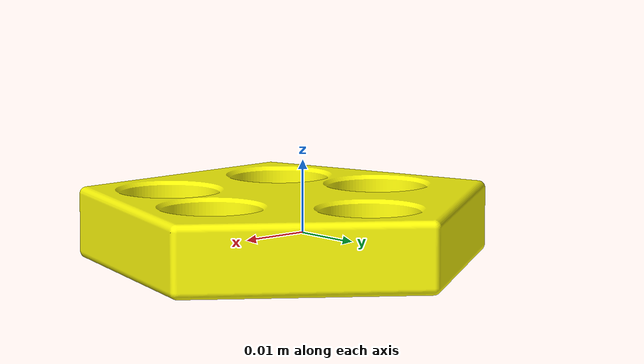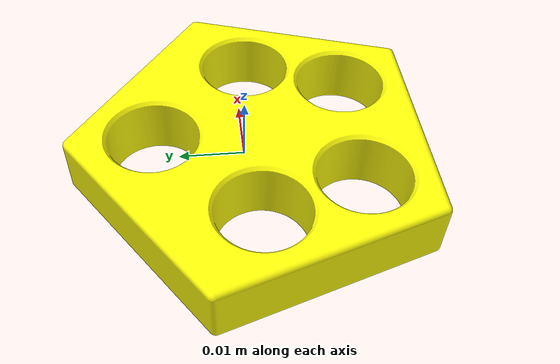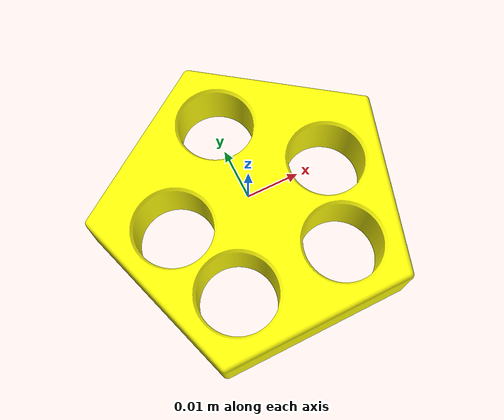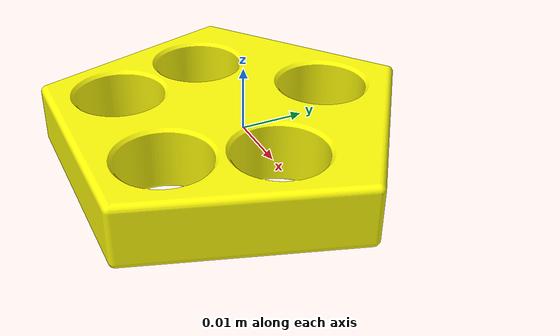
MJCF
<mujoco model="toy_five_insertion_five">
  <default>
    <default class="toy_five_insertion_five_visual">
      <geom group="2" type="mesh" contype="0" conaffinity="0"/>
    </default>
    <default class="toy_five_insertion_five_collision">
      <geom group="3" type="mesh"/>
    </default>
  </default>
  <asset>
    <material name="toy_five_insertion_five_material" specular="0.5" shininess="0.5" rgba="1 0.99109215 0.028425755 1"/>
    <mesh file="toy_five_insertion_five.obj"/>
    <mesh file="toy_five_insertion_five_collision_0.obj"/>
    <mesh file="toy_five_insertion_five_collision_1.obj"/>
    <mesh file="toy_five_insertion_five_collision_2.obj"/>
    <mesh file="toy_five_insertion_five_collision_3.obj"/>
    <mesh file="toy_five_insertion_five_collision_4.obj"/>
    <mesh file="toy_five_insertion_five_collision_5.obj"/>
    <mesh file="toy_five_insertion_five_collision_6.obj"/>
    <mesh file="toy_five_insertion_five_collision_7.obj"/>
    <mesh file="toy_five_insertion_five_collision_8.obj"/>
    <mesh file="toy_five_insertion_five_collision_9.obj"/>
    <mesh file="toy_five_insertion_five_collision_10.obj"/>
    <mesh file="toy_five_insertion_five_collision_11.obj"/>
    <mesh file="toy_five_insertion_five_collision_12.obj"/>
    <mesh file="toy_five_insertion_five_collision_13.obj"/>
    <mesh file="toy_five_insertion_five_collision_14.obj"/>
    <mesh file="toy_five_insertion_five_collision_15.obj"/>
    <mesh file="toy_five_insertion_five_collision_16.obj"/>
    <mesh file="toy_five_insertion_five_collision_17.obj"/>
    <mesh file="toy_five_insertion_five_collision_18.obj"/>
    <mesh file="toy_five_insertion_five_collision_19.obj"/>
    <mesh file="toy_five_insertion_five_collision_20.obj"/>
    <mesh file="toy_five_insertion_five_collision_21.obj"/>
    <mesh file="toy_five_insertion_five_collision_22.obj"/>
    <mesh file="toy_five_insertion_five_collision_23.obj"/>
    <mesh file="toy_five_insertion_five_collision_24.obj"/>
    <mesh file="toy_five_insertion_five_collision_25.obj"/>
    <mesh file="toy_five_insertion_five_collision_26.obj"/>
    <mesh file="toy_five_insertion_five_collision_27.obj"/>
    <mesh file="toy_five_insertion_five_collision_28.obj"/>
    <mesh file="toy_five_insertion_five_collision_29.obj"/>
    <mesh file="toy_five_insertion_five_collision_30.obj"/>
    <mesh file="toy_five_insertion_five_collision_31.obj"/>
    <mesh file="toy_five_insertion_five_collision_32.obj"/>
    <mesh file="toy_five_insertion_five_collision_33.obj"/>
    <mesh file="toy_five_insertion_five_collision_34.obj"/>
    <mesh file="toy_five_insertion_five_collision_35.obj"/>
    <mesh file="toy_five_insertion_five_collision_36.obj"/>
    <mesh file="toy_five_insertion_five_collision_37.obj"/>
    <mesh file="toy_five_insertion_five_collision_38.obj"/>
    <mesh file="toy_five_insertion_five_collision_39.obj"/>
    <mesh file="toy_five_insertion_five_collision_40.obj"/>
    <mesh file="toy_five_insertion_five_collision_41.obj"/>
    <mesh file="toy_five_insertion_five_collision_42.obj"/>
    <mesh file="toy_five_insertion_five_collision_43.obj"/>
    <mesh file="toy_five_insertion_five_collision_44.obj"/>
    <mesh file="toy_five_insertion_five_collision_45.obj"/>
    <mesh file="toy_five_insertion_five_collision_46.obj"/>
    <mesh file="toy_five_insertion_five_collision_47.obj"/>
    <mesh file="toy_five_insertion_five_collision_48.obj"/>
    <mesh file="toy_five_insertion_five_collision_49.obj"/>
    <mesh file="toy_five_insertion_five_collision_50.obj"/>
    <mesh file="toy_five_insertion_five_collision_51.obj"/>
    <mesh file="toy_five_insertion_five_collision_52.obj"/>
    <mesh file="toy_five_insertion_five_collision_53.obj"/>
    <mesh file="toy_five_insertion_five_collision_54.obj"/>
    <mesh file="toy_five_insertion_five_collision_55.obj"/>
    <mesh file="toy_five_insertion_five_collision_56.obj"/>
    <mesh file="toy_five_insertion_five_collision_57.obj"/>
    <mesh file="toy_five_insertion_five_collision_58.obj"/>
    <mesh file="toy_five_insertion_five_collision_59.obj"/>
    <mesh file="toy_five_insertion_five_collision_60.obj"/>
    <mesh file="toy_five_insertion_five_collision_61.obj"/>
    <mesh file="toy_five_insertion_five_collision_62.obj"/>
    <mesh file="toy_five_insertion_five_collision_63.obj"/>
    <mesh file="toy_five_insertion_five_collision_64.obj"/>
    <mesh file="toy_five_insertion_five_collision_65.obj"/>
    <mesh file="toy_five_insertion_five_collision_66.obj"/>
    <mesh file="toy_five_insertion_five_collision_67.obj"/>
    <mesh file="toy_five_insertion_five_collision_68.obj"/>
    <mesh file="toy_five_insertion_five_collision_69.obj"/>
    <mesh file="toy_five_insertion_five_collision_70.obj"/>
    <mesh file="toy_five_insertion_five_collision_71.obj"/>
    <mesh file="toy_five_insertion_five_collision_72.obj"/>
    <mesh file="toy_five_insertion_five_collision_73.obj"/>
  </asset>
  <worldbody>
    <body name="toy_five_insertion_five">
      <freejoint/>
      <geom material="toy_five_insertion_five_material" mesh="toy_five_insertion_five" class="toy_five_insertion_five_visual"/>
      <geom mesh="toy_five_insertion_five_collision_0" rgba="0.8431470032554789 0.1730719803800872 0.3996753027734926 1" class="toy_five_insertion_five_collision"/>
      <geom mesh="toy_five_insertion_five_collision_1" rgba="0.7243651531870886 0.5396626018999219 0.44139622097108444 1" class="toy_five_insertion_five_collision"/>
      <geom mesh="toy_five_insertion_five_collision_2" rgba="0.43437822045113905 0.43199944602909657 0.45699726946878727 1" class="toy_five_insertion_five_collision"/>
      <geom mesh="toy_five_insertion_five_collision_3" rgba="0.7572673653587453 0.513028742191479 0.07045216776699414 1" class="toy_five_insertion_five_collision"/>
      <geom mesh="toy_five_insertion_five_collision_4" rgba="0.90909619667794 0.3050360500834769 0.9417147022771828 1" class="toy_five_insertion_five_collision"/>
      <geom mesh="toy_five_insertion_five_collision_5" rgba="0.6195206836827488 0.7905967530513222 0.8597769071472916 1" class="toy_five_insertion_five_collision"/>
      <geom mesh="toy_five_insertion_five_collision_6" rgba="0.021935716060219046 0.520529314268957 0.06896665904837096 1" class="toy_five_insertion_five_collision"/>
      <geom mesh="toy_five_insertion_five_collision_7" rgba="0.065329624961867 0.26051532778146624 0.4238685339221705 1" class="toy_five_insertion_five_collision"/>
      <geom mesh="toy_five_insertion_five_collision_8" rgba="0.6274183227959609 0.8570607131699203 0.9007773389797016 1" class="toy_five_insertion_five_collision"/>
      <geom mesh="toy_five_insertion_five_collision_9" rgba="0.43516774288238014 0.48098482292727807 0.7447710062869743 1" class="toy_five_insertion_five_collision"/>
      <geom mesh="toy_five_insertion_five_collision_10" rgba="0.5192895008709781 0.8458921079484304 0.7807107516895934 1" class="toy_five_insertion_five_collision"/>
      <geom mesh="toy_five_insertion_five_collision_11" rgba="0.06407176033929463 0.2066564967012201 0.5655320108967842 1" class="toy_five_insertion_five_collision"/>
      <geom mesh="toy_five_insertion_five_collision_12" rgba="0.9784153534154234 0.5521512788350941 0.9631040192657314 1" class="toy_five_insertion_five_collision"/>
      <geom mesh="toy_five_insertion_five_collision_13" rgba="0.3392987714391873 0.3767577090489934 0.1696164555336187 1" class="toy_five_insertion_five_collision"/>
      <geom mesh="toy_five_insertion_five_collision_14" rgba="0.8340094588417821 0.016007377655499422 0.049145858619198846 1" class="toy_five_insertion_five_collision"/>
      <geom mesh="toy_five_insertion_five_collision_15" rgba="0.3853744932109311 0.9320720845469848 0.5054089148049726 1" class="toy_five_insertion_five_collision"/>
      <geom mesh="toy_five_insertion_five_collision_16" rgba="0.7262424814353706 0.13346900787934335 0.6332566538636838 1" class="toy_five_insertion_five_collision"/>
      <geom mesh="toy_five_insertion_five_collision_17" rgba="0.5887569049500098 0.8728154738858975 0.5797407310951768 1" class="toy_five_insertion_five_collision"/>
      <geom mesh="toy_five_insertion_five_collision_18" rgba="0.16929390352509255 0.05079145745370417 0.7474499073962364 1" class="toy_five_insertion_five_collision"/>
      <geom mesh="toy_five_insertion_five_collision_19" rgba="0.6367151105030725 0.010540720908714274 0.5229121512537109 1" class="toy_five_insertion_five_collision"/>
      <geom mesh="toy_five_insertion_five_collision_20" rgba="0.7545809619875616 0.5723935151079861 0.204179003531064 1" class="toy_five_insertion_five_collision"/>
      <geom mesh="toy_five_insertion_five_collision_21" rgba="0.0915624221735436 0.9233714942161435 0.3624457068168956 1" class="toy_five_insertion_five_collision"/>
      <geom mesh="toy_five_insertion_five_collision_22" rgba="0.6686227571178559 0.6926230773521218 0.172271965791995 1" class="toy_five_insertion_five_collision"/>
      <geom mesh="toy_five_insertion_five_collision_23" rgba="0.7680427933087316 0.9589317642009401 0.28630016657310897 1" class="toy_five_insertion_five_collision"/>
      <geom mesh="toy_five_insertion_five_collision_24" rgba="0.20985725479713102 0.45692760770831997 0.4720695906671195 1" class="toy_five_insertion_five_collision"/>
      <geom mesh="toy_five_insertion_five_collision_25" rgba="0.5584903084286662 0.8895270007830589 0.9673730884669456 1" class="toy_five_insertion_five_collision"/>
      <geom mesh="toy_five_insertion_five_collision_26" rgba="0.07895517371324423 0.7360149083328869 0.5995333936865201 1" class="toy_five_insertion_five_collision"/>
      <geom mesh="toy_five_insertion_five_collision_27" rgba="0.8225872584657377 0.6864072442676459 0.8646288595234077 1" class="toy_five_insertion_five_collision"/>
      <geom mesh="toy_five_insertion_five_collision_28" rgba="0.16397299827367806 0.6709814420020088 0.14693764754870853 1" class="toy_five_insertion_five_collision"/>
      <geom mesh="toy_five_insertion_five_collision_29" rgba="0.8127199630963121 0.6002715754060046 0.5687848123998541 1" class="toy_five_insertion_five_collision"/>
      <geom mesh="toy_five_insertion_five_collision_30" rgba="0.571111101562962 0.9298098842725845 0.3805570399257 1" class="toy_five_insertion_five_collision"/>
      <geom mesh="toy_five_insertion_five_collision_31" rgba="0.4833997683095408 0.5520243603116798 0.8519238423424038 1" class="toy_five_insertion_five_collision"/>
      <geom mesh="toy_five_insertion_five_collision_32" rgba="0.0592655710962392 0.7861129641368169 0.8190453048324644 1" class="toy_five_insertion_five_collision"/>
      <geom mesh="toy_five_insertion_five_collision_33" rgba="0.4475687621957436 0.8425736297627414 0.09246337607332134 1" class="toy_five_insertion_five_collision"/>
      <geom mesh="toy_five_insertion_five_collision_34" rgba="0.8718622971763524 0.8834769949860347 0.8400375149338292 1" class="toy_five_insertion_five_collision"/>
      <geom mesh="toy_five_insertion_five_collision_35" rgba="0.5533365176467431 0.2534498239524646 0.21415293960971582 1" class="toy_five_insertion_five_collision"/>
      <geom mesh="toy_five_insertion_five_collision_36" rgba="0.3605273080158087 0.17018766305906308 0.12266809446843696 1" class="toy_five_insertion_five_collision"/>
      <geom mesh="toy_five_insertion_five_collision_37" rgba="0.36496949755395147 0.8023988737081376 0.5343657134422248 1" class="toy_five_insertion_five_collision"/>
      <geom mesh="toy_five_insertion_five_collision_38" rgba="0.23285874441926857 0.4381737092533582 0.7990234611133633 1" class="toy_five_insertion_five_collision"/>
      <geom mesh="toy_five_insertion_five_collision_39" rgba="0.3502874589713443 0.7203227673536778 0.9139666862592446 1" class="toy_five_insertion_five_collision"/>
      <geom mesh="toy_five_insertion_five_collision_40" rgba="0.37382058819591635 0.11226238154890933 0.5745734145364313 1" class="toy_five_insertion_five_collision"/>
      <geom mesh="toy_five_insertion_five_collision_41" rgba="0.19360726516677385 0.7312953545957116 0.8691261164552375 1" class="toy_five_insertion_five_collision"/>
      <geom mesh="toy_five_insertion_five_collision_42" rgba="0.8194433707464255 0.702300658124522 0.9491748851722848 1" class="toy_five_insertion_five_collision"/>
      <geom mesh="toy_five_insertion_five_collision_43" rgba="0.2084532577791488 0.5217352994594165 0.9317359737371319 1" class="toy_five_insertion_five_collision"/>
      <geom mesh="toy_five_insertion_five_collision_44" rgba="0.9370139872992768 0.5536028278545924 0.9425519870425991 1" class="toy_five_insertion_five_collision"/>
      <geom mesh="toy_five_insertion_five_collision_45" rgba="0.9025189975692863 0.7261518180280014 0.03117797841233172 1" class="toy_five_insertion_five_collision"/>
      <geom mesh="toy_five_insertion_five_collision_46" rgba="0.1865984678013578 0.6580967718228848 0.23757581548350692 1" class="toy_five_insertion_five_collision"/>
      <geom mesh="toy_five_insertion_five_collision_47" rgba="0.6053601120884041 0.9027240679414932 0.8418776450418355 1" class="toy_five_insertion_five_collision"/>
      <geom mesh="toy_five_insertion_five_collision_48" rgba="0.8786453062211786 0.31025468249042176 0.485664245002991 1" class="toy_five_insertion_five_collision"/>
      <geom mesh="toy_five_insertion_five_collision_49" rgba="0.26107939091961985 0.766653513225912 0.6117994136628161 1" class="toy_five_insertion_five_collision"/>
      <geom mesh="toy_five_insertion_five_collision_50" rgba="0.7583260615159778 0.5644411059732338 0.9957563879495925 1" class="toy_five_insertion_five_collision"/>
      <geom mesh="toy_five_insertion_five_collision_51" rgba="0.6620551831517513 0.5439214084924637 0.11021958989540548 1" class="toy_five_insertion_five_collision"/>
      <geom mesh="toy_five_insertion_five_collision_52" rgba="0.45849316874648505 0.5773057463561693 0.8063888730294471 1" class="toy_five_insertion_five_collision"/>
      <geom mesh="toy_five_insertion_five_collision_53" rgba="0.2541561953171597 0.08381442607098022 0.249166412548114 1" class="toy_five_insertion_five_collision"/>
      <geom mesh="toy_five_insertion_five_collision_54" rgba="0.4294332448009959 0.07245758490992427 0.760701921355688 1" class="toy_five_insertion_five_collision"/>
      <geom mesh="toy_five_insertion_five_collision_55" rgba="0.2681566486366387 0.7768344279102131 0.73790287412064 1" class="toy_five_insertion_five_collision"/>
      <geom mesh="toy_five_insertion_five_collision_56" rgba="0.2918363195830076 0.292514294094824 0.4206978397767639 1" class="toy_five_insertion_five_collision"/>
      <geom mesh="toy_five_insertion_five_collision_57" rgba="0.8437573470342589 0.17524803715709492 0.8950027469738271 1" class="toy_five_insertion_five_collision"/>
      <geom mesh="toy_five_insertion_five_collision_58" rgba="0.013891788591831045 0.17521449248859533 0.6523948652965097 1" class="toy_five_insertion_five_collision"/>
      <geom mesh="toy_five_insertion_five_collision_59" rgba="0.4589091422774737 0.2592678966409623 0.20049169042620407 1" class="toy_five_insertion_five_collision"/>
      <geom mesh="toy_five_insertion_five_collision_60" rgba="0.7204036478408208 0.255777557233803 0.07368141228413916 1" class="toy_five_insertion_five_collision"/>
      <geom mesh="toy_five_insertion_five_collision_61" rgba="0.5813861063433823 0.3328953523089262 0.8401855175787045 1" class="toy_five_insertion_five_collision"/>
      <geom mesh="toy_five_insertion_five_collision_62" rgba="0.7461768840605695 0.10733632750846178 0.7370920352636884 1" class="toy_five_insertion_five_collision"/>
      <geom mesh="toy_five_insertion_five_collision_63" rgba="0.40297183658725244 0.4134146694636748 0.10151925553944574 1" class="toy_five_insertion_five_collision"/>
      <geom mesh="toy_five_insertion_five_collision_64" rgba="0.6823843943326869 0.9593477713647915 0.6654391379532374 1" class="toy_five_insertion_five_collision"/>
      <geom mesh="toy_five_insertion_five_collision_65" rgba="0.923602076267453 0.7195844356089014 0.6577696009948344 1" class="toy_five_insertion_five_collision"/>
      <geom mesh="toy_five_insertion_five_collision_66" rgba="0.8324433363456418 0.8676792960671784 0.6270631787269312 1" class="toy_five_insertion_five_collision"/>
      <geom mesh="toy_five_insertion_five_collision_67" rgba="0.5310757186944428 0.2707940390008017 0.5800936674770512 1" class="toy_five_insertion_five_collision"/>
      <geom mesh="toy_five_insertion_five_collision_68" rgba="0.9191465402115311 0.8462331983961427 0.7822324647962867 1" class="toy_five_insertion_five_collision"/>
      <geom mesh="toy_five_insertion_five_collision_69" rgba="0.2345166049567724 0.5338655433460231 0.987808696271109 1" class="toy_five_insertion_five_collision"/>
      <geom mesh="toy_five_insertion_five_collision_70" rgba="0.8643933514101202 0.3689903712812488 0.6785320408107002 1" class="toy_five_insertion_five_collision"/>
      <geom mesh="toy_five_insertion_five_collision_71" rgba="0.5579430008112595 0.4125593957588568 0.9524652655741302 1" class="toy_five_insertion_five_collision"/>
      <geom mesh="toy_five_insertion_five_collision_72" rgba="0.6200949754885265 0.9569255023152738 0.029610410503465467 1" class="toy_five_insertion_five_collision"/>
      <geom mesh="toy_five_insertion_five_collision_73" rgba="0.33121372496987067 0.11415311254614613 0.8649405839972765 1" class="toy_five_insertion_five_collision"/>
    </body>
  </worldbody>
</mujoco>
